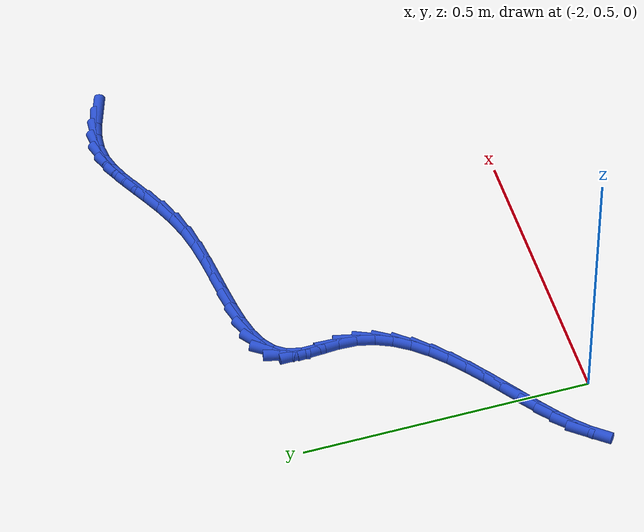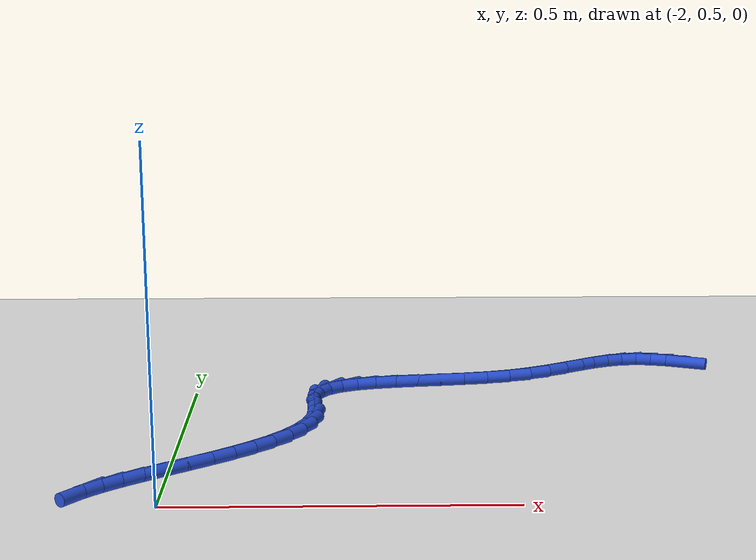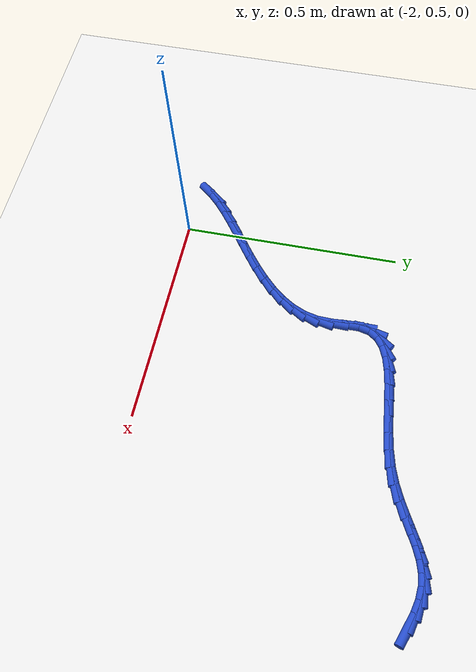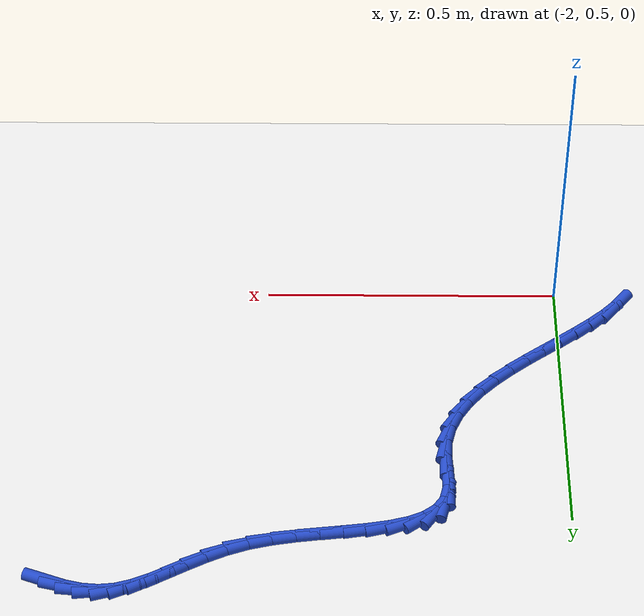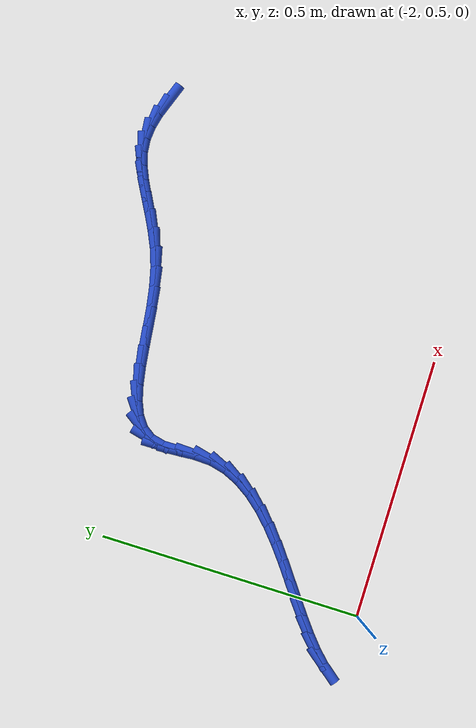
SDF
<sdf version="1.6">
 <world name="default">
  <model name="ground_plane">
   <static>1</static>
   <link name="link">
    <collision name="collision">
     <geometry><plane><normal>0 0 1</normal><size>100 100</size></plane></geometry>
     <surface><friction><ode><mu>100</mu><mu2>50</mu2></ode></friction></surface>
    </collision>
    <visual name="visual">
     <cast_shadows>0</cast_shadows>
     <geometry><plane><normal>0 0 1</normal><size>100 100</size></plane></geometry>
     <material>
      <script><uri>file://media/materials/scripts/gazebo.material</uri><name>Gazebo/WhiteGlow</name></script>
     </material>
    </visual>
   </link>
  </model>
  <model name="line">
   <link name="link_57">
    <pose>-1.1772356278379854 1.1324872779263222 0.01 0 1.57 -0.34448142181713126</pose>
    <collision name="collision">
     <geometry><cylinder><radius>0.01</radius><length>0.08</length></cylinder></geometry>
    </collision>
    <visual name="visual">
     <material>
      <script><name>Gazebo/Blue</name><uri>file://media/materials/scripts/gazebo.material</uri></script>
     </material>
     <geometry><cylinder><radius>0.01</radius><length>0.08</length></cylinder></geometry>
    </visual>
   </link>
   <link name="link_58">
    <pose>-1.2042301585140398 1.1421725672715501 0.01 0 1.57 -0.23185690156513195</pose>
    <collision name="collision">
     <geometry><cylinder><radius>0.01</radius><length>0.08</length></cylinder></geometry>
    </collision>
    <visual name="visual">
     <material>
      <script><name>Gazebo/Blue</name><uri>file://media/materials/scripts/gazebo.material</uri></script>
     </material>
     <geometry><cylinder><radius>0.01</radius><length>0.08</length></cylinder></geometry>
    </visual>
   </link>
   <link name="link_59">
    <pose>-1.2308305300215383 1.1484529926382365 0.01 0 1.57 -0.08372820688072695</pose>
    <collision name="collision">
     <geometry><cylinder><radius>0.01</radius><length>0.08</length></cylinder></geometry>
    </collision>
    <visual name="visual">
     <material>
      <script><name>Gazebo/Blue</name><uri>file://media/materials/scripts/gazebo.material</uri></script>
     </material>
     <geometry><cylinder><radius>0.01</radius><length>0.08</length></cylinder></geometry>
    </visual>
   </link>
   <link name="link_60">
    <pose>-1.2571110753279273 1.1506585719900917 0.01 0 1.57 0.09720884950132962</pose>
    <collision name="collision">
     <geometry><cylinder><radius>0.01</radius><length>0.08</length></cylinder></geometry>
    </collision>
    <visual name="visual">
     <material>
      <script><name>Gazebo/Blue</name><uri>file://media/materials/scripts/gazebo.material</uri></script>
     </material>
     <geometry><cylinder><radius>0.01</radius><length>0.08</length></cylinder></geometry>
    </visual>
   </link>
   <link name="link_61">
    <pose>-1.2831462005080072 1.148119725387512 0.01 0 1.57 0.2819185565437472</pose>
    <collision name="collision">
     <geometry><cylinder><radius>0.01</radius><length>0.08</length></cylinder></geometry>
    </collision>
    <visual name="visual">
     <material>
      <script><name>Gazebo/Blue</name><uri>file://media/materials/scripts/gazebo.material</uri></script>
     </material>
     <geometry><cylinder><radius>0.01</radius><length>0.08</length></cylinder></geometry>
    </visual>
   </link>
   <link name="link_62">
    <pose>-1.3090900669652124 1.1406055340218775 0.01 0 1.57 0.4113120938510309</pose>
    <collision name="collision">
     <geometry><cylinder><radius>0.01</radius><length>0.08</length></cylinder></geometry>
    </collision>
    <visual name="visual">
     <material>
      <script><name>Gazebo/Blue</name><uri>file://media/materials/scripts/gazebo.material</uri></script>
     </material>
     <geometry><cylinder><radius>0.01</radius><length>0.08</length></cylinder></geometry>
    </visual>
   </link>
   <link name="link_63">
    <pose>-1.335328716937232 1.1291604435115823 0.01 0 1.57 0.481885160426395</pose>
    <collision name="collision">
     <geometry><cylinder><radius>0.01</radius><length>0.08</length></cylinder></geometry>
    </collision>
    <visual name="visual">
     <material>
      <script><name>Gazebo/Blue</name><uri>file://media/materials/scripts/gazebo.material</uri></script>
     </material>
     <geometry><cylinder><radius>0.01</radius><length>0.08</length></cylinder></geometry>
    </visual>
   </link>
   <link name="link_64">
    <pose>-1.3622900993055573 1.1150593896012648 0.01 0 1.57 0.503401445067003</pose>
    <collision name="collision">
     <geometry><cylinder><radius>0.01</radius><length>0.08</length></cylinder></geometry>
    </collision>
    <visual name="visual">
     <material>
      <script><name>Gazebo/Blue</name><uri>file://media/materials/scripts/gazebo.material</uri></script>
     </material>
     <geometry><cylinder><radius>0.01</radius><length>0.08</length></cylinder></geometry>
    </visual>
   </link>
   <link name="link_65">
    <pose>-1.3904021629516803 1.099577308035563 0.01 0 1.57 0.48346176687973663</pose>
    <collision name="collision">
     <geometry><cylinder><radius>0.01</radius><length>0.08</length></cylinder></geometry>
    </collision>
    <visual name="visual">
     <material>
      <script><name>Gazebo/Blue</name><uri>file://media/materials/scripts/gazebo.material</uri></script>
     </material>
     <geometry><cylinder><radius>0.01</radius><length>0.08</length></cylinder></geometry>
    </visual>
   </link>
   <link name="link_66">
    <pose>-1.4200928567570923 1.0839891345591153 0.01 0 1.57 0.42692756879477745</pose>
    <collision name="collision">
     <geometry><cylinder><radius>0.01</radius><length>0.08</length></cylinder></geometry>
    </collision>
    <visual name="visual">
     <material>
      <script><name>Gazebo/Blue</name><uri>file://media/materials/scripts/gazebo.material</uri></script>
     </material>
     <geometry><cylinder><radius>0.01</radius><length>0.08</length></cylinder></geometry>
    </visual>
   </link>
   <link name="link_67">
    <pose>-1.4517901296032836 1.0695698049165578 0.01 0 1.57 0.3375384432785946</pose>
    <collision name="collision">
     <geometry><cylinder><radius>0.01</radius><length>0.08</length></cylinder></geometry>
    </collision>
    <visual name="visual">
     <material>
      <script><name>Gazebo/Blue</name><uri>file://media/materials/scripts/gazebo.material</uri></script>
     </material>
     <geometry><cylinder><radius>0.01</radius><length>0.08</length></cylinder></geometry>
    </visual>
   </link>
   <link name="link_68">
    <pose>-1.4859199372988179 1.0575912761672759 0.01 0 1.57 0.23822882449814034</pose>
    <collision name="collision">
     <geometry><cylinder><radius>0.01</radius><length>0.08</length></cylinder></geometry>
    </collision>
    <visual name="visual">
     <material>
      <script><name>Gazebo/Blue</name><uri>file://media/materials/scripts/gazebo.material</uri></script>
     </material>
     <geometry><cylinder><radius>0.01</radius><length>0.08</length></cylinder></geometry>
    </visual>
   </link>
   <link name="link_69">
    <pose>-1.522495841061396 1.0487091738411023 0.01 0 1.57 0.16883211485869765</pose>
    <collision name="collision">
     <geometry><cylinder><radius>0.01</radius><length>0.08</length></cylinder></geometry>
    </collision>
    <visual name="visual">
     <material>
      <script><name>Gazebo/Blue</name><uri>file://media/materials/scripts/gazebo.material</uri></script>
     </material>
     <geometry><cylinder><radius>0.01</radius><length>0.08</length></cylinder></geometry>
    </visual>
   </link>
   <link name="link_70">
    <pose>-1.560616224300529 1.042211372893946 0.01 0 1.57 0.12892711441760724</pose>
    <collision name="collision">
     <geometry><cylinder><radius>0.01</radius><length>0.08</length></cylinder></geometry>
    </collision>
    <visual name="visual">
     <material>
      <script><name>Gazebo/Blue</name><uri>file://media/materials/scripts/gazebo.material</uri></script>
     </material>
     <geometry><cylinder><radius>0.01</radius><length>0.08</length></cylinder></geometry>
    </visual>
   </link>
   <link name="link_71">
    <pose>-1.5992564011893233 1.0372018189761578 0.01 0 1.57 0.11532002854234076</pose>
    <collision name="collision">
     <geometry><cylinder><radius>0.01</radius><length>0.08</length></cylinder></geometry>
    </collision>
    <visual name="visual">
     <material>
      <script><name>Gazebo/Blue</name><uri>file://media/materials/scripts/gazebo.material</uri></script>
     </material>
     <geometry><cylinder><radius>0.01</radius><length>0.08</length></cylinder></geometry>
    </visual>
   </link>
   <link name="link_72">
    <pose>-1.637391685900886 1.032784457738088 0.01 0 1.57 0.12826695757120316</pose>
    <collision name="collision">
     <geometry><cylinder><radius>0.01</radius><length>0.08</length></cylinder></geometry>
    </collision>
    <visual name="visual">
     <material>
      <script><name>Gazebo/Blue</name><uri>file://media/materials/scripts/gazebo.material</uri></script>
     </material>
     <geometry><cylinder><radius>0.01</radius><length>0.08</length></cylinder></geometry>
    </visual>
   </link>
   <link name="link_73">
    <pose>-1.6739973926083238 1.0280632348300873 0.01 0 1.57 0.17216655258966776</pose>
    <collision name="collision">
     <geometry><cylinder><radius>0.01</radius><length>0.08</length></cylinder></geometry>
    </collision>
    <visual name="visual">
     <material>
      <script><name>Gazebo/Blue</name><uri>file://media/materials/scripts/gazebo.material</uri></script>
     </material>
     <geometry><cylinder><radius>0.01</radius><length>0.08</length></cylinder></geometry>
    </visual>
   </link>
   <link name="link_74">
    <pose>-1.7080488354847438 1.0221420959025063 0.01 0 1.57 0.25726331811636144</pose>
    <collision name="collision">
     <geometry><cylinder><radius>0.01</radius><length>0.08</length></cylinder></geometry>
    </collision>
    <visual name="visual">
     <material>
      <script><name>Gazebo/Blue</name><uri>file://media/materials/scripts/gazebo.material</uri></script>
     </material>
     <geometry><cylinder><radius>0.01</radius><length>0.08</length></cylinder></geometry>
    </visual>
   </link>
   <link name="link_75">
    <pose>-1.7385213287032533 1.0141249866056958 0.01 0 1.57 0.40235740940196135</pose>
    <collision name="collision">
     <geometry><cylinder><radius>0.01</radius><length>0.08</length></cylinder></geometry>
    </collision>
    <visual name="visual">
     <material>
      <script><name>Gazebo/Blue</name><uri>file://media/materials/scripts/gazebo.material</uri></script>
     </material>
     <geometry><cylinder><radius>0.01</radius><length>0.08</length></cylinder></geometry>
    </visual>
   </link>
   <link name="link_76">
    <pose>-1.7643901864369576 1.003115852590006 0.01 0 1.57 0.634486448030301</pose>
    <collision name="collision">
     <geometry><cylinder><radius>0.01</radius><length>0.08</length></cylinder></geometry>
    </collision>
    <visual name="visual">
     <material>
      <script><name>Gazebo/Blue</name><uri>file://media/materials/scripts/gazebo.material</uri></script>
     </material>
     <geometry><cylinder><radius>0.01</radius><length>0.08</length></cylinder></geometry>
    </visual>
   </link>
   <link name="link_77">
    <pose>-1.7846307228589662 0.9882186395057875 0.01 0 1.57 0.9665586676599686</pose>
    <collision name="collision">
     <geometry><cylinder><radius>0.01</radius><length>0.08</length></cylinder></geometry>
    </collision>
    <visual name="visual">
     <material>
      <script><name>Gazebo/Blue</name><uri>file://media/materials/scripts/gazebo.material</uri></script>
     </material>
     <geometry><cylinder><radius>0.01</radius><length>0.08</length></cylinder></geometry>
    </visual>
   </link>
   <link name="link_78">
    <pose>-1.7982182521423837 0.9685372930033913 0.01 0 1.57 1.3397652919131398</pose>
    <collision name="collision">
     <geometry><cylinder><radius>0.01</radius><length>0.08</length></cylinder></geometry>
    </collision>
    <visual name="visual">
     <material>
      <script><name>Gazebo/Blue</name><uri>file://media/materials/scripts/gazebo.material</uri></script>
     </material>
     <geometry><cylinder><radius>0.01</radius><length>0.08</length></cylinder></geometry>
    </visual>
   </link>
   <link name="link_79">
    <pose>-1.8041770512477864 0.9432056214771167 0.01 0 1.57 -1.5601213194515915</pose>
    <collision name="collision">
     <geometry><cylinder><radius>0.01</radius><length>0.08</length></cylinder></geometry>
    </collision>
    <visual name="visual">
     <material>
      <script><name>Gazebo/Blue</name><uri>file://media/materials/scripts/gazebo.material</uri></script>
     </material>
     <geometry><cylinder><radius>0.01</radius><length>0.08</length></cylinder></geometry>
    </visual>
   </link>
   <link name="link_80">
    <pose>-1.8038521692573324 0.9127728883477183 0.01 0 1.57 -1.5107689227942482</pose>
    <collision name="collision">
     <geometry><cylinder><radius>0.01</radius><length>0.08</length></cylinder></geometry>
    </collision>
    <visual name="visual">
     <material>
      <script><name>Gazebo/Blue</name><uri>file://media/materials/scripts/gazebo.material</uri></script>
     </material>
     <geometry><cylinder><radius>0.01</radius><length>0.08</length></cylinder></geometry>
    </visual>
   </link>
   <link name="link_81">
    <pose>-1.8018698867729603 0.8797896029163349 0.01 0 1.57 1.5339193391813333</pose>
    <collision name="collision">
     <geometry><cylinder><radius>0.01</radius><length>0.08</length></cylinder></geometry>
    </collision>
    <visual name="visual">
     <material>
      <script><name>Gazebo/Blue</name><uri>file://media/materials/scripts/gazebo.material</uri></script>
     </material>
     <geometry><cylinder><radius>0.01</radius><length>0.08</length></cylinder></geometry>
    </visual>
   </link>
   <link name="link_82">
    <pose>-1.8030816107078962 0.8469459601972049 0.01 0 1.57 1.3391086376146026</pose>
    <collision name="collision">
     <geometry><cylinder><radius>0.01</radius><length>0.08</length></cylinder></geometry>
    </collision>
    <visual name="visual">
     <material>
      <script><name>Gazebo/Blue</name><uri>file://media/materials/scripts/gazebo.material</uri></script>
     </material>
     <geometry><cylinder><radius>0.01</radius><length>0.08</length></cylinder></geometry>
    </visual>
   </link>
   <link name="link_83">
    <pose>-1.8103951862088816 0.815946287509181 0.01 0 1.57 1.1532130733497599</pose>
    <collision name="collision">
     <geometry><cylinder><radius>0.01</radius><length>0.08</length></cylinder></geometry>
    </collision>
    <visual name="visual">
     <material>
      <script><name>Gazebo/Blue</name><uri>file://media/materials/scripts/gazebo.material</uri></script>
     </material>
     <geometry><cylinder><radius>0.01</radius><length>0.08</length></cylinder></geometry>
    </visual>
   </link>
   <link name="link_84">
    <pose>-1.823335971722134 0.7867791527722598 0.01 0 1.57 0.9978079981529836</pose>
    <collision name="collision">
     <geometry><cylinder><radius>0.01</radius><length>0.08</length></cylinder></geometry>
    </collision>
    <visual name="visual">
     <material>
      <script><name>Gazebo/Blue</name><uri>file://media/materials/scripts/gazebo.material</uri></script>
     </material>
     <geometry><cylinder><radius>0.01</radius><length>0.08</length></cylinder></geometry>
    </visual>
   </link>
   <link name="link_85">
    <pose>-1.841090363336493 0.7592611859501264 0.01 0 1.57 0.8750564170237828</pose>
    <collision name="collision">
     <geometry><cylinder><radius>0.01</radius><length>0.08</length></cylinder></geometry>
    </collision>
    <visual name="visual">
     <material>
      <script><name>Gazebo/Blue</name><uri>file://media/materials/scripts/gazebo.material</uri></script>
     </material>
     <geometry><cylinder><radius>0.01</radius><length>0.08</length></cylinder></geometry>
    </visual>
   </link>
   <link name="link_86">
    <pose>-1.8628447571407964 0.7332090170064669 0.01 0 1.57 0.7819572365847536</pose>
    <collision name="collision">
     <geometry><cylinder><radius>0.01</radius><length>0.08</length></cylinder></geometry>
    </collision>
    <visual name="visual">
     <material>
      <script><name>Gazebo/Blue</name><uri>file://media/materials/scripts/gazebo.material</uri></script>
     </material>
     <geometry><cylinder><radius>0.01</radius><length>0.08</length></cylinder></geometry>
    </visual>
   </link>
   <link name="link_87">
    <pose>-1.8877855492238849 0.7084392759049671 0.01 0 1.57 0.7140678746551105</pose>
    <collision name="collision">
     <geometry><cylinder><radius>0.01</radius><length>0.08</length></cylinder></geometry>
    </collision>
    <visual name="visual">
     <material>
      <script><name>Gazebo/Blue</name><uri>file://media/materials/scripts/gazebo.material</uri></script>
     </material>
     <geometry><cylinder><radius>0.01</radius><length>0.08</length></cylinder></geometry>
    </visual>
   </link>
   <link name="link_88">
    <pose>-1.9150991356745963 0.6847685926093123 0.01 0 1.57 0.6674502998512541</pose>
    <collision name="collision">
     <geometry><cylinder><radius>0.01</radius><length>0.08</length></cylinder></geometry>
    </collision>
    <visual name="visual">
     <material>
      <script><name>Gazebo/Blue</name><uri>file://media/materials/scripts/gazebo.material</uri></script>
     </material>
     <geometry><cylinder><radius>0.01</radius><length>0.08</length></cylinder></geometry>
    </visual>
   </link>
   <link name="link_89">
    <pose>-1.9439719125817696 0.6620135970831892 0.01 0 1.57 0.639359087255914</pose>
    <collision name="collision">
     <geometry><cylinder><radius>0.01</radius><length>0.08</length></cylinder></geometry>
    </collision>
    <visual name="visual">
     <material>
      <script><name>Gazebo/Blue</name><uri>file://media/materials/scripts/gazebo.material</uri></script>
     </material>
     <geometry><cylinder><radius>0.01</radius><length>0.08</length></cylinder></geometry>
    </visual>
   </link>
   <link name="link_90">
    <pose>-1.9735902760342439 0.6399909192902824 0.01 0 1.57 0.6284103750160742</pose>
    <collision name="collision">
     <geometry><cylinder><radius>0.01</radius><length>0.08</length></cylinder></geometry>
    </collision>
    <visual name="visual">
     <material>
      <script><name>Gazebo/Blue</name><uri>file://media/materials/scripts/gazebo.material</uri></script>
     </material>
     <geometry><cylinder><radius>0.01</radius><length>0.08</length></cylinder></geometry>
    </visual>
   </link>
   <link name="link_91">
    <pose>-2.003140622120858 0.6185171891942787 0.01 0 1.57 0.634661056065516</pose>
    <collision name="collision">
     <geometry><cylinder><radius>0.01</radius><length>0.08</length></cylinder></geometry>
    </collision>
    <visual name="visual">
     <material>
      <script><name>Gazebo/Blue</name><uri>file://media/materials/scripts/gazebo.material</uri></script>
     </material>
     <geometry><cylinder><radius>0.01</radius><length>0.08</length></cylinder></geometry>
    </visual>
   </link>
   <link name="link_92">
    <pose>-2.0318093469304515 0.5974090367588631 0.01 0 1.57 0.6598074531961498</pose>
    <collision name="collision">
     <geometry><cylinder><radius>0.01</radius><length>0.08</length></cylinder></geometry>
    </collision>
    <visual name="visual">
     <material>
      <script><name>Gazebo/Blue</name><uri>file://media/materials/scripts/gazebo.material</uri></script>
     </material>
     <geometry><cylinder><radius>0.01</radius><length>0.08</length></cylinder></geometry>
    </visual>
   </link>
   <link name="link_93">
    <pose>-2.0587828465518623 0.5764830919477222 0.01 0 1.57 0.7076213629044643</pose>
    <collision name="collision">
     <geometry><cylinder><radius>0.01</radius><length>0.08</length></cylinder></geometry>
    </collision>
    <visual name="visual">
     <material>
      <script><name>Gazebo/Blue</name><uri>file://media/materials/scripts/gazebo.material</uri></script>
     </material>
     <geometry><cylinder><radius>0.01</radius><length>0.08</length></cylinder></geometry>
    </visual>
   </link>
   <link name="link_94">
    <pose>-2.08324751707393 0.5555559847245408 0.01 0 1.57 0.7846740207454632</pose>
    <collision name="collision">
     <geometry><cylinder><radius>0.01</radius><length>0.08</length></cylinder></geometry>
    </collision>
    <visual name="visual">
     <material>
      <script><name>Gazebo/Blue</name><uri>file://media/materials/scripts/gazebo.material</uri></script>
     </material>
     <geometry><cylinder><radius>0.01</radius><length>0.08</length></cylinder></geometry>
    </visual>
   </link>
   <link name="link_95">
    <pose>-2.1043897545854935 0.5344443450530056 0.01 0 1.57 0.9011126494347083</pose>
    <collision name="collision">
     <geometry><cylinder><radius>0.01</radius><length>0.08</length></cylinder></geometry>
    </collision>
    <visual name="visual">
     <material>
      <script><name>Gazebo/Blue</name><uri>file://media/materials/scripts/gazebo.material</uri></script>
     </material>
     <geometry><cylinder><radius>0.01</radius><length>0.08</length></cylinder></geometry>
    </visual>
   </link>
  </model>
 </world>
</sdf>
